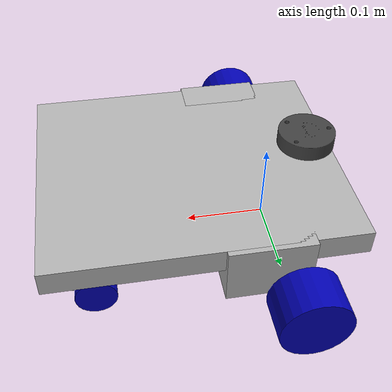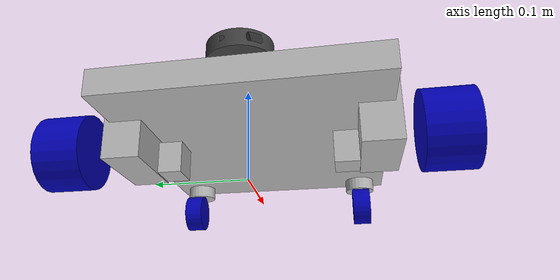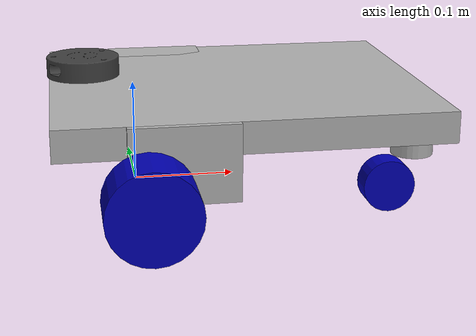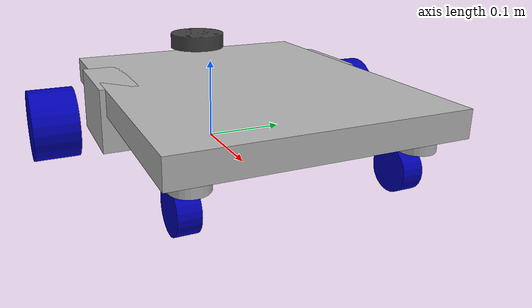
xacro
<?xml version="1.0" ?>
<robot name="scuttle" xmlns:xacro="http://www.ros.org/wiki/xacro">
    <xacro:include filename="$(find scuttle_description)/urdf/materials.xacro" />
    <xacro:include filename="$(find scuttle_description)/urdf/scuttle.gazebo" />

    <!--
        This model of Scuttle is based on the SCUTTLE 2.4 model as defined here: https://grabcad.com/library/scuttle-robot-v2-4-1
    -->

    <link name="base_link">
    </link>

    <!--
        A box that pretends to be the ground. Used for testing that the scuttle model has been assembled correctly.
    -->

    <!-- The chassis of scuttle -->
    <!--
        Define the connection between base_link and chassis_link. Relative to base_link the joint
        is on the axle line, at the height of the middle of the aluminium extrusions.
    -->
    <joint name="chassis_joint" type="fixed">
        <origin rpy="0 0 0" xyz="0 0 0.08475"/>
        <parent link="base_link"/>
        <child link="chassis_link"/>
    </joint>

    <link name="chassis_link">
        <inertial>
            <origin rpy="0 0 0" xyz="0.101 0 0"/>
            <mass value="3.288323846275119"/>
            <inertia ixx="0.038876" ixy="1.3e-05" ixz="1e-06" iyy="0.047513" iyz="0.000486" izz="0.084083"/>
        </inertial>
        <!-- Aluminium frame with electronics -->
        <visual>
            <origin rpy="0 0 0" xyz="0.101 0 0"/>
            <geometry>
                <box size="0.365 0.305 0.0300" />
            </geometry>
            <material name="silver"/>
        </visual>
        <collision>
            <origin rpy="0 0 0" xyz="0.101 0 0"/>
            <geometry>
                <box size="0.365 0.305 0.0300" />
            </geometry>
        </collision>

        <!-- Left wheel bracket -->
        <visual>
            <origin rpy="0 0 0" xyz="0.0335 0.1374 -0.021"/>
            <geometry>
                <box size="0.100 0.0429 0.0720" />
            </geometry>
            <material name="silver"/>
        </visual>
        <collision>
            <origin rpy="0 0 0" xyz="0.0335 0.1374 -0.021"/>
            <geometry>
                <box size="0.100 0.0429 0.0720" />
            </geometry>
        </collision>

        <!-- Left motor -->
        <visual>
            <origin rpy="0 0 0" xyz="0.0620 0.12025 -0.037255"/>
            <geometry>
                <box size="0.037 0.0645 0.0370" />
            </geometry>
            <material name="silver"/>
        </visual>
        <collision>
            <origin rpy="0 0 0" xyz="0.0620 0.12025 -0.037255"/>
            <geometry>
                <box size="0.037 0.0645 0.0370" />
            </geometry>
        </collision>

        <!-- Right wheel bracket -->
        <visual>
            <origin rpy="0 0 0" xyz="0.0335 -0.1374 -0.021"/>
            <geometry>
                <box size="0.100 0.0429 0.0720" />
            </geometry>
            <material name="silver"/>
        </visual>
        <collision>
            <origin rpy="0 0 0" xyz="0.0335 -0.1374 -0.021"/>
            <geometry>
                <box size="0.100 0.0429 0.0720" />
            </geometry>
        </collision>

        <!-- Right motor -->
        <visual>
            <origin rpy="0 0 0" xyz="0.0620 -0.12025 -0.037255"/>
            <geometry>
                <box size="0.037 0.0645 0.0370" />
            </geometry>
            <material name="silver"/>
        </visual>
        <collision>
            <origin rpy="0 0 0" xyz="0.0620 -0.12025 -0.037255"/>
            <geometry>
                <box size="0.037 0.0645 0.0370" />
            </geometry>
        </collision>
    </link>

    <!--
        The left rear wheel. This includes the sprocket for the drive belt.
    -->
    <joint name="l_wheel_joint" type="continuous">
        <origin rpy="0 0 0" xyz="0.0 0.20042 -0.0430"/>
        <parent link="chassis_link"/>
        <child link="l_wheel"/>
        <axis xyz="0.0 1.0 0.0"/>
    </joint>

    <link name="l_wheel">
        <inertial>
            <origin rpy="0 0 0" xyz="0 0 0"/>
            <mass value="0.5928646271111422"/>
            <inertia ixx="0.000334" ixy="0.0" ixz="0.0" iyy="0.000332" iyz="0.0" izz="0.000332"/>
        </inertial>
        <visual>
            <origin rpy="1.570796 0 0" xyz="0 0 0"/>
            <geometry>
                <cylinder length="0.0523" radius="0.04175" />
            </geometry>
            <material name="blue"/>
        </visual>
        <collision>
            <origin rpy="1.570796 0 0" xyz="0 0 0"/>
            <geometry>
                <cylinder length="0.0523" radius="0.04175" />
            </geometry>
        </collision>
    </link>

    <!--
        The right rear wheel. This includes the sprocket for the drive belt.
    -->
    <joint name="r_wheel_joint" type="continuous">
        <origin rpy="0 0 0" xyz="0.0 -0.20042 -0.0430"/>
        <parent link="chassis_link"/>
        <child link="r_wheel"/>
        <axis xyz="0.0 1.0 0.0"/>
    </joint>

    <link name="r_wheel">
        <inertial>
            <origin rpy="0 0 0" xyz="0 0 0"/>
            <mass value="0.5928646271111422"/>
            <inertia ixx="0.000334" ixy="0.0" ixz="0.0" iyy="0.000332" iyz="0.0" izz="0.000332"/>
        </inertial>
        <visual>
            <origin rpy="1.570796 0 0" xyz="0 0 0"/>
            <geometry>
                <cylinder length="0.0523" radius="0.04175" />
            </geometry>
            <material name="blue"/>
        </visual>
        <collision>
            <origin rpy="1.570796 0 0" xyz="0 0 0"/>
            <geometry>
                <cylinder length="0.0523" radius="0.04175" />
            </geometry>
        </collision>
    </link>

    <!--
        The swivel unit for the left caster
    -->
    <joint name="l_caster_swivel_joint" type="continuous">
        <origin rpy="0 0 0" xyz="0.250250 0.119250 -0.024660"/>
        <parent link="chassis_link"/>
        <child link="l_caster_swivel"/>
        <axis xyz="0.0 0.0 1.0"/>
    </joint>

    <link name="l_caster_swivel">
        <inertial>
            <origin rpy="0 0 0" xyz="0 0 0"/>
            <mass value="0.02074189648802402"/>
            <inertia ixx="7e-06" ixy="0.0" ixz="0.0" iyy="8e-06" iyz="0" izz="9e-06"/>
        </inertial>
        <visual>
            <origin rpy="0 0 0" xyz="0 0 0"/>
            <geometry>
                <cylinder length="0.016" radius="0.01951" />
            </geometry>
            <material name="silver"/>
        </visual>
        <collision>
            <origin rpy="0 0 0" xyz="0 0 0"/>
            <geometry>
                <cylinder length="0.016" radius="0.01951" />
            </geometry>
        </collision>
    </link>

    <!--
        The wheel for the left caster
    -->
    <joint name="l_caster_wheel_joint" type="continuous">
        <origin rpy="0 0 0" xyz="-0.02340 0.0 -0.036340"/>
        <parent link="l_caster_swivel"/>
        <child link="l_caster_wheel"/>
        <axis xyz="0.0 1.0 0.0"/>
    </joint>

    <link name="l_caster_wheel">
        <inertial>
            <origin rpy="0 0 0" xyz="0.0 0.0 0.0"/>
            <mass value="0.03841110590847018"/>
            <inertia ixx="1.2e-05" ixy="0.0" ixz="-0.0" iyy="7e-06" iyz="0.0" izz="7e-06"/>
        </inertial>
        <visual>
            <origin rpy="1.570796 0 0" xyz="0 0 0"/>
            <geometry>
                <cylinder length="0.0230" radius="0.0244" />
            </geometry>
            <material name="blue"/>
        </visual>
        <collision>
            <origin rpy="1.570796 0 0" xyz="0 0 0"/>
            <geometry>
                <cylinder length="0.0230" radius="0.0244" />
            </geometry>
        </collision>
    </link>

    <!--
        The swivel unit for the right caster
    -->
    <joint name="r_caster_swivel_joint" type="continuous">
        <origin rpy="0 0 0" xyz="0.250250 -0.119250 -0.024660"/>
        <parent link="chassis_link"/>
        <child link="r_caster_swivel"/>
        <axis xyz="0.0 0.0 1.0"/>
    </joint>

    <link name="r_caster_swivel">
        <inertial>
            <origin rpy="0 0 0" xyz="0 0 0"/>
            <mass value="0.02074189648802402"/>
            <inertia ixx="7e-06" ixy="0.0" ixz="0.0" iyy="8e-06" iyz="0" izz="9e-06"/>
        </inertial>
        <visual>
            <origin rpy="0 0 0" xyz="0 0 0"/>
            <geometry>
                <cylinder length="0.016" radius="0.01951" />
            </geometry>
            <material name="silver"/>
        </visual>
        <collision>
            <origin rpy="0 0 0" xyz="0 0 0"/>
            <geometry>
                <cylinder length="0.016" radius="0.01951" />
            </geometry>
        </collision>
    </link>

    <!--
        The wheel for the right caster
    -->
    <joint name="r_caster_wheel_joint" type="continuous">
        <origin rpy="0 0 0" xyz="-0.02340 0.0 -0.036340"/>
        <parent link="r_caster_swivel"/>
        <child link="r_caster_wheel"/>
        <axis xyz="0.0 1.0 0.0"/>
    </joint>

    <link name="r_caster_wheel">
        <inertial>
            <origin rpy="0 0 0" xyz="0.0 0.0 0.0"/>
            <mass value="0.03841110590847018"/>
            <inertia ixx="1.2e-05" ixy="0.0" ixz="-0.0" iyy="7e-06" iyz="0.0" izz="7e-06"/>
        </inertial>
        <visual>
            <origin rpy="1.570796 0 0" xyz="0 0 0"/>
            <geometry>
                <cylinder length="0.0230" radius="0.0244" />
            </geometry>
            <material name="blue"/>
        </visual>
        <collision>
            <origin rpy="1.570796 0 0" xyz="0 0 0"/>
            <geometry>
                <cylinder length="0.0230" radius="0.0244" />
            </geometry>
        </collision>
    </link>

    <!--
        The LIDAR unit. This is attached to the rear extrusion on the chassis.
    -->
    <joint name="lidar" type="fixed">
        <origin rpy="0 0 3.141592" xyz="-0.047900 0.0 0.024850"/>
        <parent link="chassis_link"/>
        <child link="lidar_1"/>
    </joint>

    <link name="lidar_1">
        <inertial>
            <origin rpy="0 0 0" xyz="-0.0010241190327231165 -0.0008953477993804172 0.009594767416774092"/>
            <mass value="0.07327266108520486"/>
            <inertia ixx="2.5e-05" ixy="1e-06" ixz="0.0" iyy="2.5e-05" iyz="0.0" izz="4.4e-05"/>
        </inertial>
        <visual>
            <origin rpy="0 0 0" xyz="-0.0 0.0275 -0.1096"/>
            <geometry>
                <mesh filename="package://scuttle_description/meshes/lidar_1.stl" scale="0.001 0.001 0.001"/>
            </geometry>
            <material name="gray"/>
        </visual>
        <collision>
            <origin rpy="0 0 0" xyz="-0.0 0.0275 -0.1096"/>
            <geometry>
                <mesh filename="package://scuttle_description/meshes/lidar_1.stl" scale="0.001 0.001 0.001"/>
            </geometry>
        </collision>
    </link>
</robot>

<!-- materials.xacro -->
<robot name="scuttle" xmlns:xacro="http://www.ros.org/wiki/xacro" >

    <material name="silver">
        <color rgba="0.700 0.700 0.700 1.000"/>
    </material>

    <material name="gray">
        <color rgba="0.250 0.250 0.250 1.000"/>
    </material>

    <material name="blue">
        <color rgba="0.000 0.000 0.700 1.000"/>
    </material>

</robot>

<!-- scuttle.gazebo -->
<robot name="scuttle" xmlns:xacro="http://www.ros.org/wiki/xacro" >

<xacro:property name="body_color" value="Gazebo/Silver" />
<xacro:property name="wheel_color" value="Gazebo/Blue" />
<xacro:property name="lidar_color" value="Gazebo/Gray" />

<xacro:arg name="differential_drive_command_topic" default="cmd_vel"/>
<xacro:arg name="differential_drive_odometry_topic" default="odom"/>
<xacro:arg name="differential_drive_odometry_frame" default="odom"/>

<gazebo>
  <plugin filename="libgazebo_ros_control.so" name="control"/>
</gazebo>
<gazebo reference="chassis_link">
  <material>${body_color}</material>
  <mu1>0.2</mu1>
  <mu2>0.2</mu2>
  <selfCollide>true</selfCollide>
  <gravity>true</gravity>
</gazebo>

<gazebo reference="l_wheel">
  <material>${wheel_color}</material>
  <mu1>0.9</mu1>
  <mu2>0.9</mu2>
  <kp>500000.0</kp>
  <kd>10.0</kd>
  <minDepth>0.001</minDepth>
  <maxVel>0.1</maxVel>
  <fdir1>1 0 0</fdir1>
  <selfCollide>true</selfCollide>
</gazebo>

<gazebo reference="r_wheel">
  <material>${wheel_color}</material>
  <mu1>0.9</mu1>
  <mu2>0.9</mu2>
  <kp>500000.0</kp>
  <kd>10.0</kd>
  <minDepth>0.001</minDepth>
  <maxVel>0.1</maxVel>
  <fdir1>1 0 0</fdir1>
  <selfCollide>true</selfCollide>
</gazebo>

<gazebo reference="lidar_1">
  <material>${lidar_color}</material>
  <selfCollide>true</selfCollide>
</gazebo>

<gazebo reference="r_caster_swivel">
  <material>${body_color}</material>
  <mu1>0.2</mu1>
  <mu2>0.2</mu2>
  <selfCollide>true</selfCollide>
</gazebo>

<gazebo reference="l_caster_swivel">
  <material>${body_color}</material>
  <mu1>0.2</mu1>
  <mu2>0.2</mu2>
  <selfCollide>true</selfCollide>
</gazebo>

<gazebo reference="l_caster_wheel">
  <material>${wheel_color}</material>
  <mu1>0.4</mu1>
  <mu2>0.4</mu2>
  <selfCollide>true</selfCollide>
</gazebo>

<gazebo reference="r_caster_wheel">
  <material>${wheel_color}</material>
  <mu1>0.4</mu1>
  <mu2>0.4</mu2>
  <selfCollide>true</selfCollide>
</gazebo>

<gazebo>
  <plugin name="differential_drive_controller" filename="libgazebo_ros_diff_drive.so">

    <!-- Plugin update rate in Hz -->
    <updateRate>50</updateRate>

    <!-- Name of left joint, defaults to `left_joint` -->
    <leftJoint>l_wheel_joint</leftJoint>

    <!-- Name of right joint, defaults to `right_joint` -->
    <rightJoint>r_wheel_joint</rightJoint>

    <!-- The distance from the center of one wheel to the other, in meters, defaults to 0.34 m -->
    <wheelSeparation>0.355</wheelSeparation>

    <!-- Diameter of the wheels, in meters, defaults to 0.15 m -->
    <wheelDiameter>0.0833</wheelDiameter>

    <!-- Wheel acceleration, in rad/s^2, defaults to 0.0 rad/s^2 -->
    <wheelAcceleration>2.7</wheelAcceleration>

    <!-- Maximum torque which the wheels can produce, in Nm, defaults to 5 Nm -->
    <wheelTorque>0.392</wheelTorque>

    <!-- Topic to receive geometry_msgs/Twist message commands, defaults to `cmd_vel` -->
    <commandTopic>$(arg differential_drive_command_topic)</commandTopic>

    <!-- Topic to publish nav_msgs/Odometry messages, defaults to `odom` -->
    <odometryTopic>$(arg differential_drive_odometry_topic)</odometryTopic>

    <!-- Odometry frame, defaults to `odom` -->
    <odometryFrame>$(arg differential_drive_odometry_frame)</odometryFrame>

    <!-- Robot frame to calculate odometry from, defaults to `base_footprint` -->
    <robotBaseFrame>base_link</robotBaseFrame>

    <!-- Odometry source, 0 for ENCODER, 1 for WORLD, defaults to WORLD -->
    <odometrySource>1</odometrySource>

    <!-- Set to true to publish transforms for the wheel links, defaults to false -->
    <publishWheelTF>false</publishWheelTF>

    <!-- Set to true to publish transforms for the odometry, defaults to true -->
    <publishOdom>true</publishOdom>

    <!-- Set to true to publish sensor_msgs/JointState on /joint_states for the wheel joints, defaults to false -->
    <publishWheelJointState>false</publishWheelJointState>

    <!-- Set to true to swap right and left wheels, defaults to true -->
    <legacyMode>false</legacyMode>
  </plugin>
</gazebo>

 <gazebo reference="lidar_1">
    <sensor type="ray" name="rplidar_a1">
      <pose>0 0 0 0 0 0</pose>
      <visualize>false</visualize>
      <update_rate>5.5</update_rate>
      <ray>
        <scan>
          <horizontal>
            <samples>360</samples>
            <resolution>1</resolution>
            <min_angle>0</min_angle>
            <max_angle>6.283185307179586</max_angle>
          </horizontal>
        </scan>
        <range>
          <min>0.15</min>
          <max>12.0</max>
          <resolution>0.005</resolution>
        </range>
        <noise>
          <type>gaussian</type>
          <mean>0.0</mean>
          <stddev>0.01</stddev>
        </noise>
      </ray>
      <plugin name="gazebo_ros_head_hokuyo_controller" filename="libgazebo_ros_laser.so">
        <topicName>/scan</topicName>
        <frameName>lidar_1</frameName>
      </plugin>
    </sensor>
  </gazebo>
</robot>
